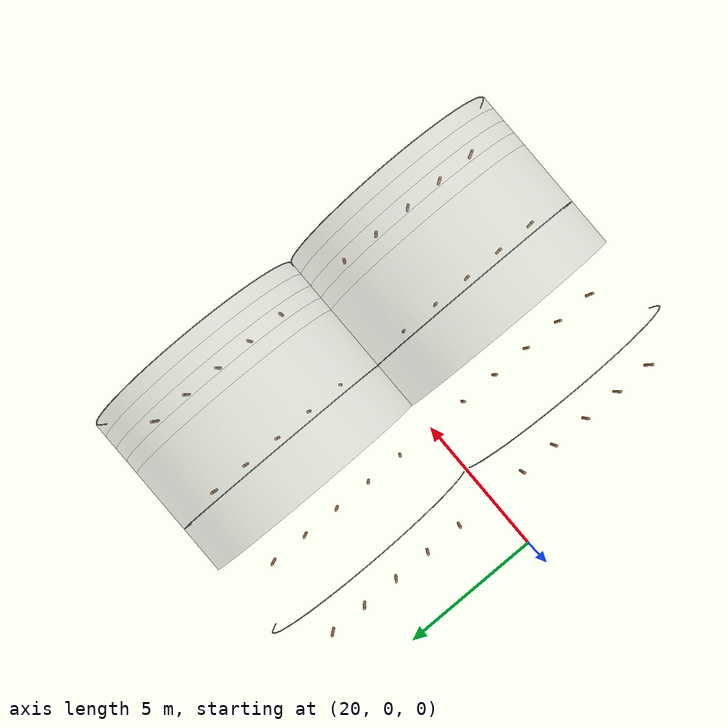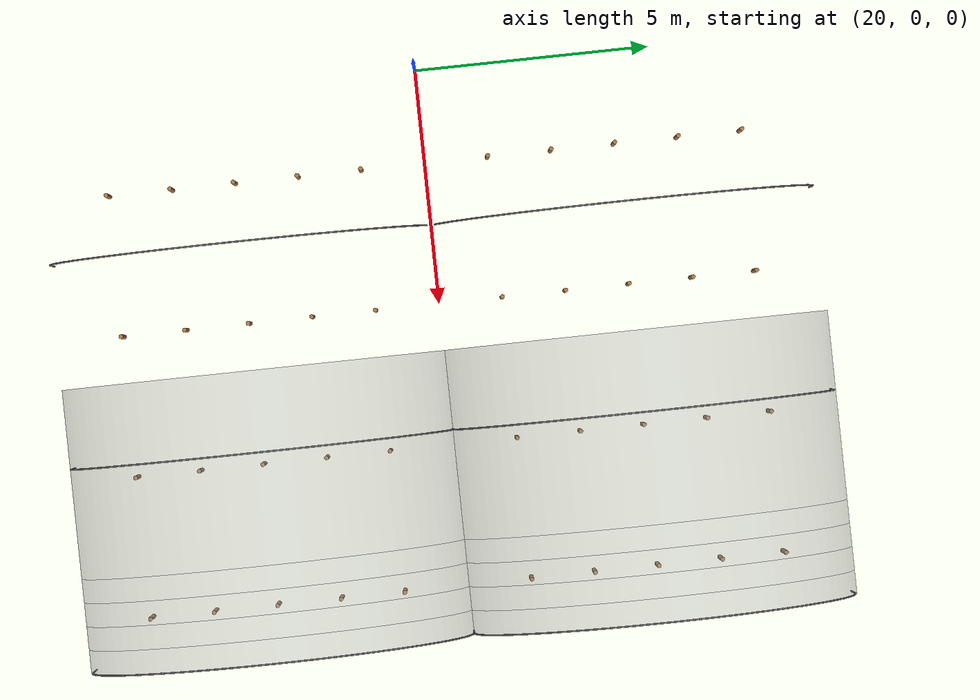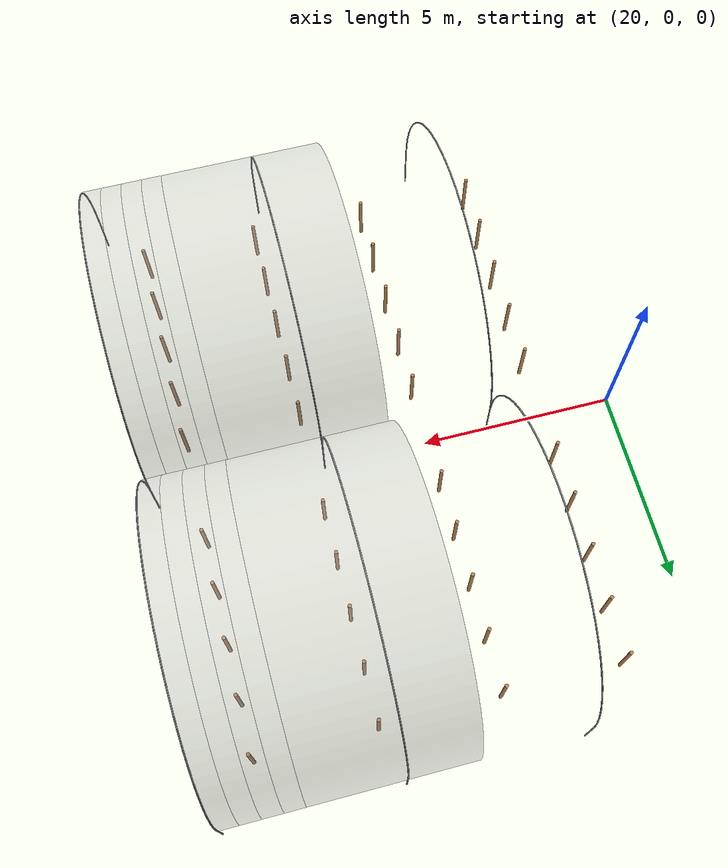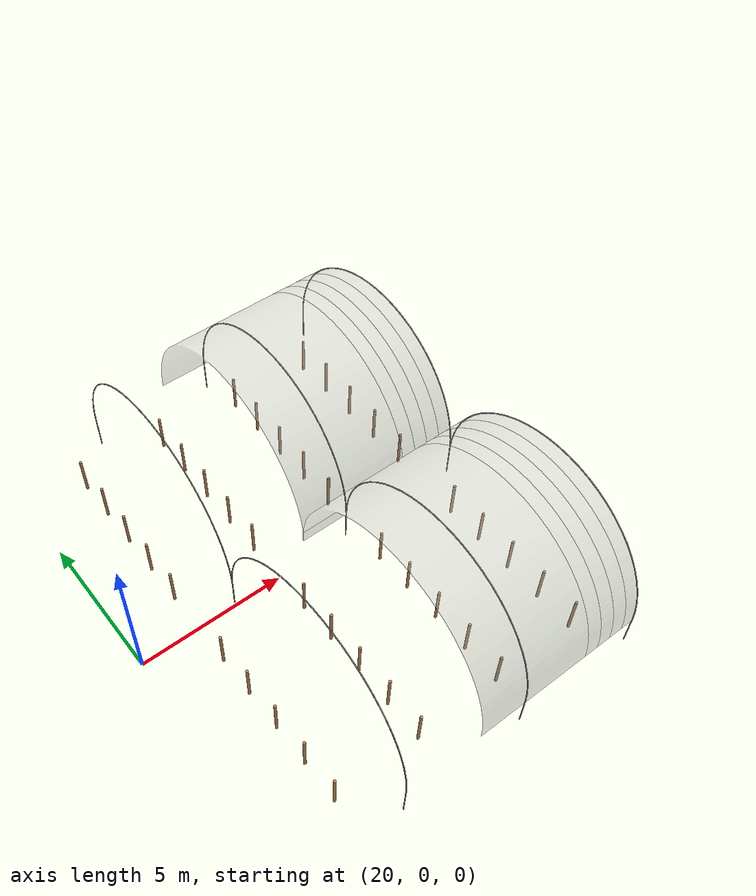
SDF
<sdf version="1.4">
 <world name="default">
  <model name="pole_25">
   <static>1</static>
   <pose>22.000 -6.750 0.691 0.0 0.0 0.0</pose>
   <link name="link">
    <collision name="collision">
     <geometry><cylinder><length>1.38235</length><radius>0.0456111</radius></cylinder></geometry>
    </collision>
    <visual name="visual">
     <geometry><cylinder><length>1.38235</length><radius>0.0456111</radius></cylinder></geometry>
     <material>
      <script><uri>file://media/materials/scripts/gazebo.material</uri><name>Gazebo/WoodFloor</name></script>
      <shader type="vertex"><normal_map>__default__</normal_map></shader>
      <emissive>0 0 0 1</emissive>
      <specular>0.01 0.01 0.01 1</specular>
      <ambient>0.9 0.9 0.9 1</ambient>
      <diffuse>0.09 0.09 0.09 1</diffuse>
     </material>
    </visual>
   </link>
  </model>
  <model name="pole_26">
   <static>1</static>
   <pose>22.000 -5.400 0.691 0.0 0.0 0.0</pose>
   <link name="link">
    <collision name="collision">
     <geometry><cylinder><length>1.38235</length><radius>0.0456111</radius></cylinder></geometry>
    </collision>
    <visual name="visual">
     <geometry><cylinder><length>1.38235</length><radius>0.0456111</radius></cylinder></geometry>
     <material>
      <script><uri>file://media/materials/scripts/gazebo.material</uri><name>Gazebo/WoodFloor</name></script>
      <shader type="vertex"><normal_map>__default__</normal_map></shader>
      <emissive>0 0 0 1</emissive>
      <specular>0.01 0.01 0.01 1</specular>
      <ambient>0.9 0.9 0.9 1</ambient>
      <diffuse>0.09 0.09 0.09 1</diffuse>
     </material>
    </visual>
   </link>
  </model>
  <model name="pole_27">
   <static>1</static>
   <pose>22.000 -4.050 0.691 0.0 0.0 0.0</pose>
   <link name="link">
    <collision name="collision">
     <geometry><cylinder><length>1.38235</length><radius>0.0456111</radius></cylinder></geometry>
    </collision>
    <visual name="visual">
     <geometry><cylinder><length>1.38235</length><radius>0.0456111</radius></cylinder></geometry>
     <material>
      <script><uri>file://media/materials/scripts/gazebo.material</uri><name>Gazebo/WoodFloor</name></script>
      <shader type="vertex"><normal_map>__default__</normal_map></shader>
      <emissive>0 0 0 1</emissive>
      <specular>0.01 0.01 0.01 1</specular>
      <ambient>0.9 0.9 0.9 1</ambient>
      <diffuse>0.09 0.09 0.09 1</diffuse>
     </material>
    </visual>
   </link>
  </model>
  <model name="pole_28">
   <static>1</static>
   <pose>22.000 -2.700 0.691 0.0 0.0 0.0</pose>
   <link name="link">
    <collision name="collision">
     <geometry><cylinder><length>1.38235</length><radius>0.0456111</radius></cylinder></geometry>
    </collision>
    <visual name="visual">
     <geometry><cylinder><length>1.38235</length><radius>0.0456111</radius></cylinder></geometry>
     <material>
      <script><uri>file://media/materials/scripts/gazebo.material</uri><name>Gazebo/WoodFloor</name></script>
      <shader type="vertex"><normal_map>__default__</normal_map></shader>
      <emissive>0 0 0 1</emissive>
      <specular>0.01 0.01 0.01 1</specular>
      <ambient>0.9 0.9 0.9 1</ambient>
      <diffuse>0.09 0.09 0.09 1</diffuse>
     </material>
    </visual>
   </link>
  </model>
  <model name="pole_29">
   <static>1</static>
   <pose>22.000 -1.350 0.691 0.0 0.0 0.0</pose>
   <link name="link">
    <collision name="collision">
     <geometry><cylinder><length>1.38235</length><radius>0.0456111</radius></cylinder></geometry>
    </collision>
    <visual name="visual">
     <geometry><cylinder><length>1.38235</length><radius>0.0456111</radius></cylinder></geometry>
     <material>
      <script><uri>file://media/materials/scripts/gazebo.material</uri><name>Gazebo/WoodFloor</name></script>
      <shader type="vertex"><normal_map>__default__</normal_map></shader>
      <emissive>0 0 0 1</emissive>
      <specular>0.01 0.01 0.01 1</specular>
      <ambient>0.9 0.9 0.9 1</ambient>
      <diffuse>0.09 0.09 0.09 1</diffuse>
     </material>
    </visual>
   </link>
  </model>
  <model name="pole_30">
   <static>1</static>
   <pose>25.000 -6.750 0.691 0.0 0.0 0.0</pose>
   <link name="link">
    <collision name="collision">
     <geometry><cylinder><length>1.38235</length><radius>0.0456111</radius></cylinder></geometry>
    </collision>
    <visual name="visual">
     <geometry><cylinder><length>1.38235</length><radius>0.0456111</radius></cylinder></geometry>
     <material>
      <script><uri>file://media/materials/scripts/gazebo.material</uri><name>Gazebo/WoodFloor</name></script>
      <shader type="vertex"><normal_map>__default__</normal_map></shader>
      <emissive>0 0 0 1</emissive>
      <specular>0.01 0.01 0.01 1</specular>
      <ambient>0.9 0.9 0.9 1</ambient>
      <diffuse>0.09 0.09 0.09 1</diffuse>
     </material>
    </visual>
   </link>
  </model>
  <model name="pole_31">
   <static>1</static>
   <pose>25.000 -5.400 0.691 0.0 0.0 0.0</pose>
   <link name="link">
    <collision name="collision">
     <geometry><cylinder><length>1.38235</length><radius>0.0456111</radius></cylinder></geometry>
    </collision>
    <visual name="visual">
     <geometry><cylinder><length>1.38235</length><radius>0.0456111</radius></cylinder></geometry>
     <material>
      <script><uri>file://media/materials/scripts/gazebo.material</uri><name>Gazebo/WoodFloor</name></script>
      <shader type="vertex"><normal_map>__default__</normal_map></shader>
      <emissive>0 0 0 1</emissive>
      <specular>0.01 0.01 0.01 1</specular>
      <ambient>0.9 0.9 0.9 1</ambient>
      <diffuse>0.09 0.09 0.09 1</diffuse>
     </material>
    </visual>
   </link>
  </model>
  <model name="pole_32">
   <static>1</static>
   <pose>25.000 -4.050 0.691 0.0 0.0 0.0</pose>
   <link name="link">
    <collision name="collision">
     <geometry><cylinder><length>1.38235</length><radius>0.0456111</radius></cylinder></geometry>
    </collision>
    <visual name="visual">
     <geometry><cylinder><length>1.38235</length><radius>0.0456111</radius></cylinder></geometry>
     <material>
      <script><uri>file://media/materials/scripts/gazebo.material</uri><name>Gazebo/WoodFloor</name></script>
      <shader type="vertex"><normal_map>__default__</normal_map></shader>
      <emissive>0 0 0 1</emissive>
      <specular>0.01 0.01 0.01 1</specular>
      <ambient>0.9 0.9 0.9 1</ambient>
      <diffuse>0.09 0.09 0.09 1</diffuse>
     </material>
    </visual>
   </link>
  </model>
  <model name="pole_33">
   <static>1</static>
   <pose>25.000 -2.700 0.691 0.0 0.0 0.0</pose>
   <link name="link">
    <collision name="collision">
     <geometry><cylinder><length>1.38235</length><radius>0.0456111</radius></cylinder></geometry>
    </collision>
    <visual name="visual">
     <geometry><cylinder><length>1.38235</length><radius>0.0456111</radius></cylinder></geometry>
     <material>
      <script><uri>file://media/materials/scripts/gazebo.material</uri><name>Gazebo/WoodFloor</name></script>
      <shader type="vertex"><normal_map>__default__</normal_map></shader>
      <emissive>0 0 0 1</emissive>
      <specular>0.01 0.01 0.01 1</specular>
      <ambient>0.9 0.9 0.9 1</ambient>
      <diffuse>0.09 0.09 0.09 1</diffuse>
     </material>
    </visual>
   </link>
  </model>
  <model name="pole_34">
   <static>1</static>
   <pose>25.000 -1.350 0.691 0.0 0.0 0.0</pose>
   <link name="link">
    <collision name="collision">
     <geometry><cylinder><length>1.38235</length><radius>0.0456111</radius></cylinder></geometry>
    </collision>
    <visual name="visual">
     <geometry><cylinder><length>1.38235</length><radius>0.0456111</radius></cylinder></geometry>
     <material>
      <script><uri>file://media/materials/scripts/gazebo.material</uri><name>Gazebo/WoodFloor</name></script>
      <shader type="vertex"><normal_map>__default__</normal_map></shader>
      <emissive>0 0 0 1</emissive>
      <specular>0.01 0.01 0.01 1</specular>
      <ambient>0.9 0.9 0.9 1</ambient>
      <diffuse>0.09 0.09 0.09 1</diffuse>
     </material>
    </visual>
   </link>
  </model>
  <model name="pole_35">
   <static>1</static>
   <pose>28.000 -6.750 0.691 0.0 0.0 0.0</pose>
   <link name="link">
    <collision name="collision">
     <geometry><cylinder><length>1.38235</length><radius>0.0456111</radius></cylinder></geometry>
    </collision>
    <visual name="visual">
     <geometry><cylinder><length>1.38235</length><radius>0.0456111</radius></cylinder></geometry>
     <material>
      <script><uri>file://media/materials/scripts/gazebo.material</uri><name>Gazebo/WoodFloor</name></script>
      <shader type="vertex"><normal_map>__default__</normal_map></shader>
      <emissive>0 0 0 1</emissive>
      <specular>0.01 0.01 0.01 1</specular>
      <ambient>0.9 0.9 0.9 1</ambient>
      <diffuse>0.09 0.09 0.09 1</diffuse>
     </material>
    </visual>
   </link>
  </model>
  <model name="pole_36">
   <static>1</static>
   <pose>28.000 -5.400 0.691 0.0 0.0 0.0</pose>
   <link name="link">
    <collision name="collision">
     <geometry><cylinder><length>1.38235</length><radius>0.0456111</radius></cylinder></geometry>
    </collision>
    <visual name="visual">
     <geometry><cylinder><length>1.38235</length><radius>0.0456111</radius></cylinder></geometry>
     <material>
      <script><uri>file://media/materials/scripts/gazebo.material</uri><name>Gazebo/WoodFloor</name></script>
      <shader type="vertex"><normal_map>__default__</normal_map></shader>
      <emissive>0 0 0 1</emissive>
      <specular>0.01 0.01 0.01 1</specular>
      <ambient>0.9 0.9 0.9 1</ambient>
      <diffuse>0.09 0.09 0.09 1</diffuse>
     </material>
    </visual>
   </link>
  </model>
  <model name="pole_37">
   <static>1</static>
   <pose>28.000 -4.050 0.691 0.0 0.0 0.0</pose>
   <link name="link">
    <collision name="collision">
     <geometry><cylinder><length>1.38235</length><radius>0.0456111</radius></cylinder></geometry>
    </collision>
    <visual name="visual">
     <geometry><cylinder><length>1.38235</length><radius>0.0456111</radius></cylinder></geometry>
     <material>
      <script><uri>file://media/materials/scripts/gazebo.material</uri><name>Gazebo/WoodFloor</name></script>
      <shader type="vertex"><normal_map>__default__</normal_map></shader>
      <emissive>0 0 0 1</emissive>
      <specular>0.01 0.01 0.01 1</specular>
      <ambient>0.9 0.9 0.9 1</ambient>
      <diffuse>0.09 0.09 0.09 1</diffuse>
     </material>
    </visual>
   </link>
  </model>
  <model name="pole_38">
   <static>1</static>
   <pose>28.000 -2.700 0.691 0.0 0.0 0.0</pose>
   <link name="link">
    <collision name="collision">
     <geometry><cylinder><length>1.38235</length><radius>0.0456111</radius></cylinder></geometry>
    </collision>
    <visual name="visual">
     <geometry><cylinder><length>1.38235</length><radius>0.0456111</radius></cylinder></geometry>
     <material>
      <script><uri>file://media/materials/scripts/gazebo.material</uri><name>Gazebo/WoodFloor</name></script>
      <shader type="vertex"><normal_map>__default__</normal_map></shader>
      <emissive>0 0 0 1</emissive>
      <specular>0.01 0.01 0.01 1</specular>
      <ambient>0.9 0.9 0.9 1</ambient>
      <diffuse>0.09 0.09 0.09 1</diffuse>
     </material>
    </visual>
   </link>
  </model>
  <model name="pole_39">
   <static>1</static>
   <pose>28.000 -1.350 0.691 0.0 0.0 0.0</pose>
   <link name="link">
    <collision name="collision">
     <geometry><cylinder><length>1.38235</length><radius>0.0456111</radius></cylinder></geometry>
    </collision>
    <visual name="visual">
     <geometry><cylinder><length>1.38235</length><radius>0.0456111</radius></cylinder></geometry>
     <material>
      <script><uri>file://media/materials/scripts/gazebo.material</uri><name>Gazebo/WoodFloor</name></script>
      <shader type="vertex"><normal_map>__default__</normal_map></shader>
      <emissive>0 0 0 1</emissive>
      <specular>0.01 0.01 0.01 1</specular>
      <ambient>0.9 0.9 0.9 1</ambient>
      <diffuse>0.09 0.09 0.09 1</diffuse>
     </material>
    </visual>
   </link>
  </model>
  <model name="pole_40">
   <static>1</static>
   <pose>31.000 -6.750 0.691 0.0 0.0 0.0</pose>
   <link name="link">
    <collision name="collision">
     <geometry><cylinder><length>1.38235</length><radius>0.0456111</radius></cylinder></geometry>
    </collision>
    <visual name="visual">
     <geometry><cylinder><length>1.38235</length><radius>0.0456111</radius></cylinder></geometry>
     <material>
      <script><uri>file://media/materials/scripts/gazebo.material</uri><name>Gazebo/WoodFloor</name></script>
      <shader type="vertex"><normal_map>__default__</normal_map></shader>
      <emissive>0 0 0 1</emissive>
      <specular>0.01 0.01 0.01 1</specular>
      <ambient>0.9 0.9 0.9 1</ambient>
      <diffuse>0.09 0.09 0.09 1</diffuse>
     </material>
    </visual>
   </link>
  </model>
  <model name="pole_41">
   <static>1</static>
   <pose>31.000 -5.400 0.691 0.0 0.0 0.0</pose>
   <link name="link">
    <collision name="collision">
     <geometry><cylinder><length>1.38235</length><radius>0.0456111</radius></cylinder></geometry>
    </collision>
    <visual name="visual">
     <geometry><cylinder><length>1.38235</length><radius>0.0456111</radius></cylinder></geometry>
     <material>
      <script><uri>file://media/materials/scripts/gazebo.material</uri><name>Gazebo/WoodFloor</name></script>
      <shader type="vertex"><normal_map>__default__</normal_map></shader>
      <emissive>0 0 0 1</emissive>
      <specular>0.01 0.01 0.01 1</specular>
      <ambient>0.9 0.9 0.9 1</ambient>
      <diffuse>0.09 0.09 0.09 1</diffuse>
     </material>
    </visual>
   </link>
  </model>
  <model name="pole_42">
   <static>1</static>
   <pose>31.000 -4.050 0.691 0.0 0.0 0.0</pose>
   <link name="link">
    <collision name="collision">
     <geometry><cylinder><length>1.38235</length><radius>0.0456111</radius></cylinder></geometry>
    </collision>
    <visual name="visual">
     <geometry><cylinder><length>1.38235</length><radius>0.0456111</radius></cylinder></geometry>
     <material>
      <script><uri>file://media/materials/scripts/gazebo.material</uri><name>Gazebo/WoodFloor</name></script>
      <shader type="vertex"><normal_map>__default__</normal_map></shader>
      <emissive>0 0 0 1</emissive>
      <specular>0.01 0.01 0.01 1</specular>
      <ambient>0.9 0.9 0.9 1</ambient>
      <diffuse>0.09 0.09 0.09 1</diffuse>
     </material>
    </visual>
   </link>
  </model>
  <model name="pole_43">
   <static>1</static>
   <pose>31.000 -2.700 0.691 0.0 0.0 0.0</pose>
   <link name="link">
    <collision name="collision">
     <geometry><cylinder><length>1.38235</length><radius>0.0456111</radius></cylinder></geometry>
    </collision>
    <visual name="visual">
     <geometry><cylinder><length>1.38235</length><radius>0.0456111</radius></cylinder></geometry>
     <material>
      <script><uri>file://media/materials/scripts/gazebo.material</uri><name>Gazebo/WoodFloor</name></script>
      <shader type="vertex"><normal_map>__default__</normal_map></shader>
      <emissive>0 0 0 1</emissive>
      <specular>0.01 0.01 0.01 1</specular>
      <ambient>0.9 0.9 0.9 1</ambient>
      <diffuse>0.09 0.09 0.09 1</diffuse>
     </material>
    </visual>
   </link>
  </model>
  <model name="pole_44">
   <static>1</static>
   <pose>31.000 -1.350 0.691 0.0 0.0 0.0</pose>
   <link name="link">
    <collision name="collision">
     <geometry><cylinder><length>1.38235</length><radius>0.0456111</radius></cylinder></geometry>
    </collision>
    <visual name="visual">
     <geometry><cylinder><length>1.38235</length><radius>0.0456111</radius></cylinder></geometry>
     <material>
      <script><uri>file://media/materials/scripts/gazebo.material</uri><name>Gazebo/WoodFloor</name></script>
      <shader type="vertex"><normal_map>__default__</normal_map></shader>
      <emissive>0 0 0 1</emissive>
      <specular>0.01 0.01 0.01 1</specular>
      <ambient>0.9 0.9 0.9 1</ambient>
      <diffuse>0.09 0.09 0.09 1</diffuse>
     </material>
    </visual>
   </link>
  </model>
  <model name="dummy_arch_4">
   <static>1</static>
   <pose>23.332 -8.100 0.0 1.5707 0.0 1.5707</pose>
   <link name="link">
    <collision name="collision">
     <geometry><mesh><uri>model://dummy_arch/dummy_arch.stl</uri></mesh></geometry>
    </collision>
    <visual name="visual">
     <geometry><mesh><uri>model://dummy_arch/dummy_arch.stl</uri></mesh></geometry>
     <material>
      <script><uri>file://media/materials/scripts/gazebo.material</uri><name>Gazebo/Grey</name></script>
     </material>
    </visual>
   </link>
  </model>
  <model name="dummy_arch_5">
   <static>1</static>
   <pose>27.665 -8.100 0.0 1.5707 0.0 1.5707</pose>
   <link name="link">
    <collision name="collision">
     <geometry><mesh><uri>model://dummy_arch/dummy_arch.stl</uri></mesh></geometry>
    </collision>
    <visual name="visual">
     <geometry><mesh><uri>model://dummy_arch/dummy_arch.stl</uri></mesh></geometry>
     <material>
      <script><uri>file://media/materials/scripts/gazebo.material</uri><name>Gazebo/Grey</name></script>
     </material>
    </visual>
   </link>
  </model>
  <model name="dummy_arch_6">
   <static>1</static>
   <pose>31.998 -8.100 0.0 1.5707 0.0 1.5707</pose>
   <link name="link">
    <collision name="collision">
     <geometry><mesh><uri>model://dummy_arch/dummy_arch.stl</uri></mesh></geometry>
    </collision>
    <visual name="visual">
     <geometry><mesh><uri>model://dummy_arch/dummy_arch.stl</uri></mesh></geometry>
     <material>
      <script><uri>file://media/materials/scripts/gazebo.material</uri><name>Gazebo/Grey</name></script>
     </material>
    </visual>
   </link>
  </model>
  <model name="canopy4m_0">
   <static>1</static>
   <pose>26.000 -4.033 0.0 1.5707 0.0 1.5707</pose>
   <link name="link">
    <collision name="collision">
     <geometry><mesh><uri>model://canopy4m/canopy4m.stl</uri></mesh></geometry>
    </collision>
    <visual name="visual">
     <geometry><mesh><uri>model://canopy4m/canopy4m.stl</uri></mesh></geometry>
     <transparency>0.65</transparency>
    </visual>
   </link>
  </model>
  <model name="canopyhalfm_0">
   <static>1</static>
   <pose>30.000 -4.033 0.0 1.5707 0.0 1.5707</pose>
   <link name="link">
    <collision name="collision">
     <geometry><mesh><uri>model://canopyhalfm/canopyhalfm.stl</uri></mesh></geometry>
    </collision>
    <visual name="visual">
     <geometry><mesh><uri>model://canopyhalfm/canopyhalfm.stl</uri></mesh></geometry>
     <transparency>0.65</transparency>
    </visual>
   </link>
  </model>
  <model name="canopyhalfm_1">
   <static>1</static>
   <pose>30.500 -4.033 0.0 1.5707 0.0 1.5707</pose>
   <link name="link">
    <collision name="collision">
     <geometry><mesh><uri>model://canopyhalfm/canopyhalfm.stl</uri></mesh></geometry>
    </collision>
    <visual name="visual">
     <geometry><mesh><uri>model://canopyhalfm/canopyhalfm.stl</uri></mesh></geometry>
     <transparency>0.65</transparency>
    </visual>
   </link>
  </model>
  <model name="canopyhalfm_2">
   <static>1</static>
   <pose>31.000 -4.033 0.0 1.5707 0.0 1.5707</pose>
   <link name="link">
    <collision name="collision">
     <geometry><mesh><uri>model://canopyhalfm/canopyhalfm.stl</uri></mesh></geometry>
    </collision>
    <visual name="visual">
     <geometry><mesh><uri>model://canopyhalfm/canopyhalfm.stl</uri></mesh></geometry>
     <transparency>0.65</transparency>
    </visual>
   </link>
  </model>
  <model name="canopyhalfm_3">
   <static>1</static>
   <pose>31.500 -4.033 0.0 1.5707 0.0 1.5707</pose>
   <link name="link">
    <collision name="collision">
     <geometry><mesh><uri>model://canopyhalfm/canopyhalfm.stl</uri></mesh></geometry>
    </collision>
    <visual name="visual">
     <geometry><mesh><uri>model://canopyhalfm/canopyhalfm.stl</uri></mesh></geometry>
     <transparency>0.65</transparency>
    </visual>
   </link>
  </model>
  <model name="pole_70">
   <static>1</static>
   <pose>22.000 1.350 0.691 0.0 0.0 0.0</pose>
   <link name="link">
    <collision name="collision">
     <geometry><cylinder><length>1.38235</length><radius>0.0456111</radius></cylinder></geometry>
    </collision>
    <visual name="visual">
     <geometry><cylinder><length>1.38235</length><radius>0.0456111</radius></cylinder></geometry>
     <material>
      <script><uri>file://media/materials/scripts/gazebo.material</uri><name>Gazebo/WoodFloor</name></script>
      <shader type="vertex"><normal_map>__default__</normal_map></shader>
      <emissive>0 0 0 1</emissive>
      <specular>0.01 0.01 0.01 1</specular>
      <ambient>0.9 0.9 0.9 1</ambient>
      <diffuse>0.09 0.09 0.09 1</diffuse>
     </material>
    </visual>
   </link>
  </model>
  <model name="pole_71">
   <static>1</static>
   <pose>22.000 2.700 0.691 0.0 0.0 0.0</pose>
   <link name="link">
    <collision name="collision">
     <geometry><cylinder><length>1.38235</length><radius>0.0456111</radius></cylinder></geometry>
    </collision>
    <visual name="visual">
     <geometry><cylinder><length>1.38235</length><radius>0.0456111</radius></cylinder></geometry>
     <material>
      <script><uri>file://media/materials/scripts/gazebo.material</uri><name>Gazebo/WoodFloor</name></script>
      <shader type="vertex"><normal_map>__default__</normal_map></shader>
      <emissive>0 0 0 1</emissive>
      <specular>0.01 0.01 0.01 1</specular>
      <ambient>0.9 0.9 0.9 1</ambient>
      <diffuse>0.09 0.09 0.09 1</diffuse>
     </material>
    </visual>
   </link>
  </model>
  <model name="pole_72">
   <static>1</static>
   <pose>22.000 4.050 0.691 0.0 0.0 0.0</pose>
   <link name="link">
    <collision name="collision">
     <geometry><cylinder><length>1.38235</length><radius>0.0456111</radius></cylinder></geometry>
    </collision>
    <visual name="visual">
     <geometry><cylinder><length>1.38235</length><radius>0.0456111</radius></cylinder></geometry>
     <material>
      <script><uri>file://media/materials/scripts/gazebo.material</uri><name>Gazebo/WoodFloor</name></script>
      <shader type="vertex"><normal_map>__default__</normal_map></shader>
      <emissive>0 0 0 1</emissive>
      <specular>0.01 0.01 0.01 1</specular>
      <ambient>0.9 0.9 0.9 1</ambient>
      <diffuse>0.09 0.09 0.09 1</diffuse>
     </material>
    </visual>
   </link>
  </model>
  <model name="pole_73">
   <static>1</static>
   <pose>22.000 5.400 0.691 0.0 0.0 0.0</pose>
   <link name="link">
    <collision name="collision">
     <geometry><cylinder><length>1.38235</length><radius>0.0456111</radius></cylinder></geometry>
    </collision>
    <visual name="visual">
     <geometry><cylinder><length>1.38235</length><radius>0.0456111</radius></cylinder></geometry>
     <material>
      <script><uri>file://media/materials/scripts/gazebo.material</uri><name>Gazebo/WoodFloor</name></script>
      <shader type="vertex"><normal_map>__default__</normal_map></shader>
      <emissive>0 0 0 1</emissive>
      <specular>0.01 0.01 0.01 1</specular>
      <ambient>0.9 0.9 0.9 1</ambient>
      <diffuse>0.09 0.09 0.09 1</diffuse>
     </material>
    </visual>
   </link>
  </model>
  <model name="pole_74">
   <static>1</static>
   <pose>22.000 6.750 0.691 0.0 0.0 0.0</pose>
   <link name="link">
    <collision name="collision">
     <geometry><cylinder><length>1.38235</length><radius>0.0456111</radius></cylinder></geometry>
    </collision>
    <visual name="visual">
     <geometry><cylinder><length>1.38235</length><radius>0.0456111</radius></cylinder></geometry>
     <material>
      <script><uri>file://media/materials/scripts/gazebo.material</uri><name>Gazebo/WoodFloor</name></script>
      <shader type="vertex"><normal_map>__default__</normal_map></shader>
      <emissive>0 0 0 1</emissive>
      <specular>0.01 0.01 0.01 1</specular>
      <ambient>0.9 0.9 0.9 1</ambient>
      <diffuse>0.09 0.09 0.09 1</diffuse>
     </material>
    </visual>
   </link>
  </model>
  <model name="pole_75">
   <static>1</static>
   <pose>25.000 1.350 0.691 0.0 0.0 0.0</pose>
   <link name="link">
    <collision name="collision">
     <geometry><cylinder><length>1.38235</length><radius>0.0456111</radius></cylinder></geometry>
    </collision>
    <visual name="visual">
     <geometry><cylinder><length>1.38235</length><radius>0.0456111</radius></cylinder></geometry>
     <material>
      <script><uri>file://media/materials/scripts/gazebo.material</uri><name>Gazebo/WoodFloor</name></script>
      <shader type="vertex"><normal_map>__default__</normal_map></shader>
      <emissive>0 0 0 1</emissive>
      <specular>0.01 0.01 0.01 1</specular>
      <ambient>0.9 0.9 0.9 1</ambient>
      <diffuse>0.09 0.09 0.09 1</diffuse>
     </material>
    </visual>
   </link>
  </model>
  <model name="pole_76">
   <static>1</static>
   <pose>25.000 2.700 0.691 0.0 0.0 0.0</pose>
   <link name="link">
    <collision name="collision">
     <geometry><cylinder><length>1.38235</length><radius>0.0456111</radius></cylinder></geometry>
    </collision>
    <visual name="visual">
     <geometry><cylinder><length>1.38235</length><radius>0.0456111</radius></cylinder></geometry>
     <material>
      <script><uri>file://media/materials/scripts/gazebo.material</uri><name>Gazebo/WoodFloor</name></script>
      <shader type="vertex"><normal_map>__default__</normal_map></shader>
      <emissive>0 0 0 1</emissive>
      <specular>0.01 0.01 0.01 1</specular>
      <ambient>0.9 0.9 0.9 1</ambient>
      <diffuse>0.09 0.09 0.09 1</diffuse>
     </material>
    </visual>
   </link>
  </model>
  <model name="pole_77">
   <static>1</static>
   <pose>25.000 4.050 0.691 0.0 0.0 0.0</pose>
   <link name="link">
    <collision name="collision">
     <geometry><cylinder><length>1.38235</length><radius>0.0456111</radius></cylinder></geometry>
    </collision>
    <visual name="visual">
     <geometry><cylinder><length>1.38235</length><radius>0.0456111</radius></cylinder></geometry>
     <material>
      <script><uri>file://media/materials/scripts/gazebo.material</uri><name>Gazebo/WoodFloor</name></script>
      <shader type="vertex"><normal_map>__default__</normal_map></shader>
      <emissive>0 0 0 1</emissive>
      <specular>0.01 0.01 0.01 1</specular>
      <ambient>0.9 0.9 0.9 1</ambient>
      <diffuse>0.09 0.09 0.09 1</diffuse>
     </material>
    </visual>
   </link>
  </model>
  <model name="pole_78">
   <static>1</static>
   <pose>25.000 5.400 0.691 0.0 0.0 0.0</pose>
   <link name="link">
    <collision name="collision">
     <geometry><cylinder><length>1.38235</length><radius>0.0456111</radius></cylinder></geometry>
    </collision>
    <visual name="visual">
     <geometry><cylinder><length>1.38235</length><radius>0.0456111</radius></cylinder></geometry>
     <material>
      <script><uri>file://media/materials/scripts/gazebo.material</uri><name>Gazebo/WoodFloor</name></script>
      <shader type="vertex"><normal_map>__default__</normal_map></shader>
      <emissive>0 0 0 1</emissive>
      <specular>0.01 0.01 0.01 1</specular>
      <ambient>0.9 0.9 0.9 1</ambient>
      <diffuse>0.09 0.09 0.09 1</diffuse>
     </material>
    </visual>
   </link>
  </model>
  <model name="pole_79">
   <static>1</static>
   <pose>25.000 6.750 0.691 0.0 0.0 0.0</pose>
   <link name="link">
    <collision name="collision">
     <geometry><cylinder><length>1.38235</length><radius>0.0456111</radius></cylinder></geometry>
    </collision>
    <visual name="visual">
     <geometry><cylinder><length>1.38235</length><radius>0.0456111</radius></cylinder></geometry>
     <material>
      <script><uri>file://media/materials/scripts/gazebo.material</uri><name>Gazebo/WoodFloor</name></script>
      <shader type="vertex"><normal_map>__default__</normal_map></shader>
      <emissive>0 0 0 1</emissive>
      <specular>0.01 0.01 0.01 1</specular>
      <ambient>0.9 0.9 0.9 1</ambient>
      <diffuse>0.09 0.09 0.09 1</diffuse>
     </material>
    </visual>
   </link>
  </model>
  <model name="pole_80">
   <static>1</static>
   <pose>28.000 1.350 0.691 0.0 0.0 0.0</pose>
   <link name="link">
    <collision name="collision">
     <geometry><cylinder><length>1.38235</length><radius>0.0456111</radius></cylinder></geometry>
    </collision>
    <visual name="visual">
     <geometry><cylinder><length>1.38235</length><radius>0.0456111</radius></cylinder></geometry>
     <material>
      <script><uri>file://media/materials/scripts/gazebo.material</uri><name>Gazebo/WoodFloor</name></script>
      <shader type="vertex"><normal_map>__default__</normal_map></shader>
      <emissive>0 0 0 1</emissive>
      <specular>0.01 0.01 0.01 1</specular>
      <ambient>0.9 0.9 0.9 1</ambient>
      <diffuse>0.09 0.09 0.09 1</diffuse>
     </material>
    </visual>
   </link>
  </model>
  <model name="pole_81">
   <static>1</static>
   <pose>28.000 2.700 0.691 0.0 0.0 0.0</pose>
   <link name="link">
    <collision name="collision">
     <geometry><cylinder><length>1.38235</length><radius>0.0456111</radius></cylinder></geometry>
    </collision>
    <visual name="visual">
     <geometry><cylinder><length>1.38235</length><radius>0.0456111</radius></cylinder></geometry>
     <material>
      <script><uri>file://media/materials/scripts/gazebo.material</uri><name>Gazebo/WoodFloor</name></script>
      <shader type="vertex"><normal_map>__default__</normal_map></shader>
      <emissive>0 0 0 1</emissive>
      <specular>0.01 0.01 0.01 1</specular>
      <ambient>0.9 0.9 0.9 1</ambient>
      <diffuse>0.09 0.09 0.09 1</diffuse>
     </material>
    </visual>
   </link>
  </model>
  <model name="pole_82">
   <static>1</static>
   <pose>28.000 4.050 0.691 0.0 0.0 0.0</pose>
   <link name="link">
    <collision name="collision">
     <geometry><cylinder><length>1.38235</length><radius>0.0456111</radius></cylinder></geometry>
    </collision>
    <visual name="visual">
     <geometry><cylinder><length>1.38235</length><radius>0.0456111</radius></cylinder></geometry>
     <material>
      <script><uri>file://media/materials/scripts/gazebo.material</uri><name>Gazebo/WoodFloor</name></script>
      <shader type="vertex"><normal_map>__default__</normal_map></shader>
      <emissive>0 0 0 1</emissive>
      <specular>0.01 0.01 0.01 1</specular>
      <ambient>0.9 0.9 0.9 1</ambient>
      <diffuse>0.09 0.09 0.09 1</diffuse>
     </material>
    </visual>
   </link>
  </model>
  <model name="pole_83">
   <static>1</static>
   <pose>28.000 5.400 0.691 0.0 0.0 0.0</pose>
   <link name="link">
    <collision name="collision">
     <geometry><cylinder><length>1.38235</length><radius>0.0456111</radius></cylinder></geometry>
    </collision>
    <visual name="visual">
     <geometry><cylinder><length>1.38235</length><radius>0.0456111</radius></cylinder></geometry>
     <material>
      <script><uri>file://media/materials/scripts/gazebo.material</uri><name>Gazebo/WoodFloor</name></script>
      <shader type="vertex"><normal_map>__default__</normal_map></shader>
      <emissive>0 0 0 1</emissive>
      <specular>0.01 0.01 0.01 1</specular>
      <ambient>0.9 0.9 0.9 1</ambient>
      <diffuse>0.09 0.09 0.09 1</diffuse>
     </material>
    </visual>
   </link>
  </model>
  <model name="pole_84">
   <static>1</static>
   <pose>28.000 6.750 0.691 0.0 0.0 0.0</pose>
   <link name="link">
    <collision name="collision">
     <geometry><cylinder><length>1.38235</length><radius>0.0456111</radius></cylinder></geometry>
    </collision>
    <visual name="visual">
     <geometry><cylinder><length>1.38235</length><radius>0.0456111</radius></cylinder></geometry>
     <material>
      <script><uri>file://media/materials/scripts/gazebo.material</uri><name>Gazebo/WoodFloor</name></script>
      <shader type="vertex"><normal_map>__default__</normal_map></shader>
      <emissive>0 0 0 1</emissive>
      <specular>0.01 0.01 0.01 1</specular>
      <ambient>0.9 0.9 0.9 1</ambient>
      <diffuse>0.09 0.09 0.09 1</diffuse>
     </material>
    </visual>
   </link>
  </model>
  <model name="pole_85">
   <static>1</static>
   <pose>31.000 1.350 0.691 0.0 0.0 0.0</pose>
   <link name="link">
    <collision name="collision">
     <geometry><cylinder><length>1.38235</length><radius>0.0456111</radius></cylinder></geometry>
    </collision>
    <visual name="visual">
     <geometry><cylinder><length>1.38235</length><radius>0.0456111</radius></cylinder></geometry>
     <material>
      <script><uri>file://media/materials/scripts/gazebo.material</uri><name>Gazebo/WoodFloor</name></script>
      <shader type="vertex"><normal_map>__default__</normal_map></shader>
      <emissive>0 0 0 1</emissive>
      <specular>0.01 0.01 0.01 1</specular>
      <ambient>0.9 0.9 0.9 1</ambient>
      <diffuse>0.09 0.09 0.09 1</diffuse>
     </material>
    </visual>
   </link>
  </model>
  <model name="pole_86">
   <static>1</static>
   <pose>31.000 2.700 0.691 0.0 0.0 0.0</pose>
   <link name="link">
    <collision name="collision">
     <geometry><cylinder><length>1.38235</length><radius>0.0456111</radius></cylinder></geometry>
    </collision>
    <visual name="visual">
     <geometry><cylinder><length>1.38235</length><radius>0.0456111</radius></cylinder></geometry>
     <material>
      <script><uri>file://media/materials/scripts/gazebo.material</uri><name>Gazebo/WoodFloor</name></script>
      <shader type="vertex"><normal_map>__default__</normal_map></shader>
      <emissive>0 0 0 1</emissive>
      <specular>0.01 0.01 0.01 1</specular>
      <ambient>0.9 0.9 0.9 1</ambient>
      <diffuse>0.09 0.09 0.09 1</diffuse>
     </material>
    </visual>
   </link>
  </model>
  <model name="pole_87">
   <static>1</static>
   <pose>31.000 4.050 0.691 0.0 0.0 0.0</pose>
   <link name="link">
    <collision name="collision">
     <geometry><cylinder><length>1.38235</length><radius>0.0456111</radius></cylinder></geometry>
    </collision>
    <visual name="visual">
     <geometry><cylinder><length>1.38235</length><radius>0.0456111</radius></cylinder></geometry>
     <material>
      <script><uri>file://media/materials/scripts/gazebo.material</uri><name>Gazebo/WoodFloor</name></script>
      <shader type="vertex"><normal_map>__default__</normal_map></shader>
      <emissive>0 0 0 1</emissive>
      <specular>0.01 0.01 0.01 1</specular>
      <ambient>0.9 0.9 0.9 1</ambient>
      <diffuse>0.09 0.09 0.09 1</diffuse>
     </material>
    </visual>
   </link>
  </model>
  <model name="pole_88">
   <static>1</static>
   <pose>31.000 5.400 0.691 0.0 0.0 0.0</pose>
   <link name="link">
    <collision name="collision">
     <geometry><cylinder><length>1.38235</length><radius>0.0456111</radius></cylinder></geometry>
    </collision>
    <visual name="visual">
     <geometry><cylinder><length>1.38235</length><radius>0.0456111</radius></cylinder></geometry>
     <material>
      <script><uri>file://media/materials/scripts/gazebo.material</uri><name>Gazebo/WoodFloor</name></script>
      <shader type="vertex"><normal_map>__default__</normal_map></shader>
      <emissive>0 0 0 1</emissive>
      <specular>0.01 0.01 0.01 1</specular>
      <ambient>0.9 0.9 0.9 1</ambient>
      <diffuse>0.09 0.09 0.09 1</diffuse>
     </material>
    </visual>
   </link>
  </model>
  <model name="pole_89">
   <static>1</static>
   <pose>31.000 6.750 0.691 0.0 0.0 0.0</pose>
   <link name="link">
    <collision name="collision">
     <geometry><cylinder><length>1.38235</length><radius>0.0456111</radius></cylinder></geometry>
    </collision>
    <visual name="visual">
     <geometry><cylinder><length>1.38235</length><radius>0.0456111</radius></cylinder></geometry>
     <material>
      <script><uri>file://media/materials/scripts/gazebo.material</uri><name>Gazebo/WoodFloor</name></script>
      <shader type="vertex"><normal_map>__default__</normal_map></shader>
      <emissive>0 0 0 1</emissive>
      <specular>0.01 0.01 0.01 1</specular>
      <ambient>0.9 0.9 0.9 1</ambient>
      <diffuse>0.09 0.09 0.09 1</diffuse>
     </material>
    </visual>
   </link>
  </model>
  <model name="dummy_arch_11">
   <static>1</static>
   <pose>23.332 0.000 0.0 1.5707 0.0 1.5707</pose>
   <link name="link">
    <collision name="collision">
     <geometry><mesh><uri>model://dummy_arch/dummy_arch.stl</uri></mesh></geometry>
    </collision>
    <visual name="visual">
     <geometry><mesh><uri>model://dummy_arch/dummy_arch.stl</uri></mesh></geometry>
     <material>
      <script><uri>file://media/materials/scripts/gazebo.material</uri><name>Gazebo/Grey</name></script>
     </material>
    </visual>
   </link>
  </model>
  <model name="dummy_arch_12">
   <static>1</static>
   <pose>27.665 0.000 0.0 1.5707 0.0 1.5707</pose>
   <link name="link">
    <collision name="collision">
     <geometry><mesh><uri>model://dummy_arch/dummy_arch.stl</uri></mesh></geometry>
    </collision>
    <visual name="visual">
     <geometry><mesh><uri>model://dummy_arch/dummy_arch.stl</uri></mesh></geometry>
     <material>
      <script><uri>file://media/materials/scripts/gazebo.material</uri><name>Gazebo/Grey</name></script>
     </material>
    </visual>
   </link>
  </model>
  <model name="dummy_arch_13">
   <static>1</static>
   <pose>31.998 0.000 0.0 1.5707 0.0 1.5707</pose>
   <link name="link">
    <collision name="collision">
     <geometry><mesh><uri>model://dummy_arch/dummy_arch.stl</uri></mesh></geometry>
    </collision>
    <visual name="visual">
     <geometry><mesh><uri>model://dummy_arch/dummy_arch.stl</uri></mesh></geometry>
     <material>
      <script><uri>file://media/materials/scripts/gazebo.material</uri><name>Gazebo/Grey</name></script>
     </material>
    </visual>
   </link>
  </model>
  <model name="canopy4m_1">
   <static>1</static>
   <pose>26.000 4.067 0.0 1.5707 0.0 1.5707</pose>
   <link name="link">
    <collision name="collision">
     <geometry><mesh><uri>model://canopy4m/canopy4m.stl</uri></mesh></geometry>
    </collision>
    <visual name="visual">
     <geometry><mesh><uri>model://canopy4m/canopy4m.stl</uri></mesh></geometry>
     <transparency>0.65</transparency>
    </visual>
   </link>
  </model>
  <model name="canopyhalfm_4">
   <static>1</static>
   <pose>30.000 4.067 0.0 1.5707 0.0 1.5707</pose>
   <link name="link">
    <collision name="collision">
     <geometry><mesh><uri>model://canopyhalfm/canopyhalfm.stl</uri></mesh></geometry>
    </collision>
    <visual name="visual">
     <geometry><mesh><uri>model://canopyhalfm/canopyhalfm.stl</uri></mesh></geometry>
     <transparency>0.65</transparency>
    </visual>
   </link>
  </model>
  <model name="canopyhalfm_5">
   <static>1</static>
   <pose>30.500 4.067 0.0 1.5707 0.0 1.5707</pose>
   <link name="link">
    <collision name="collision">
     <geometry><mesh><uri>model://canopyhalfm/canopyhalfm.stl</uri></mesh></geometry>
    </collision>
    <visual name="visual">
     <geometry><mesh><uri>model://canopyhalfm/canopyhalfm.stl</uri></mesh></geometry>
     <transparency>0.65</transparency>
    </visual>
   </link>
  </model>
  <model name="canopyhalfm_6">
   <static>1</static>
   <pose>31.000 4.067 0.0 1.5707 0.0 1.5707</pose>
   <link name="link">
    <collision name="collision">
     <geometry><mesh><uri>model://canopyhalfm/canopyhalfm.stl</uri></mesh></geometry>
    </collision>
    <visual name="visual">
     <geometry><mesh><uri>model://canopyhalfm/canopyhalfm.stl</uri></mesh></geometry>
     <transparency>0.65</transparency>
    </visual>
   </link>
  </model>
  <model name="canopyhalfm_7">
   <static>1</static>
   <pose>31.500 4.067 0.0 1.5707 0.0 1.5707</pose>
   <link name="link">
    <collision name="collision">
     <geometry><mesh><uri>model://canopyhalfm/canopyhalfm.stl</uri></mesh></geometry>
    </collision>
    <visual name="visual">
     <geometry><mesh><uri>model://canopyhalfm/canopyhalfm.stl</uri></mesh></geometry>
     <transparency>0.65</transparency>
    </visual>
   </link>
  </model>
  <include><uri>model://sun</uri></include>
 </world>
</sdf>
